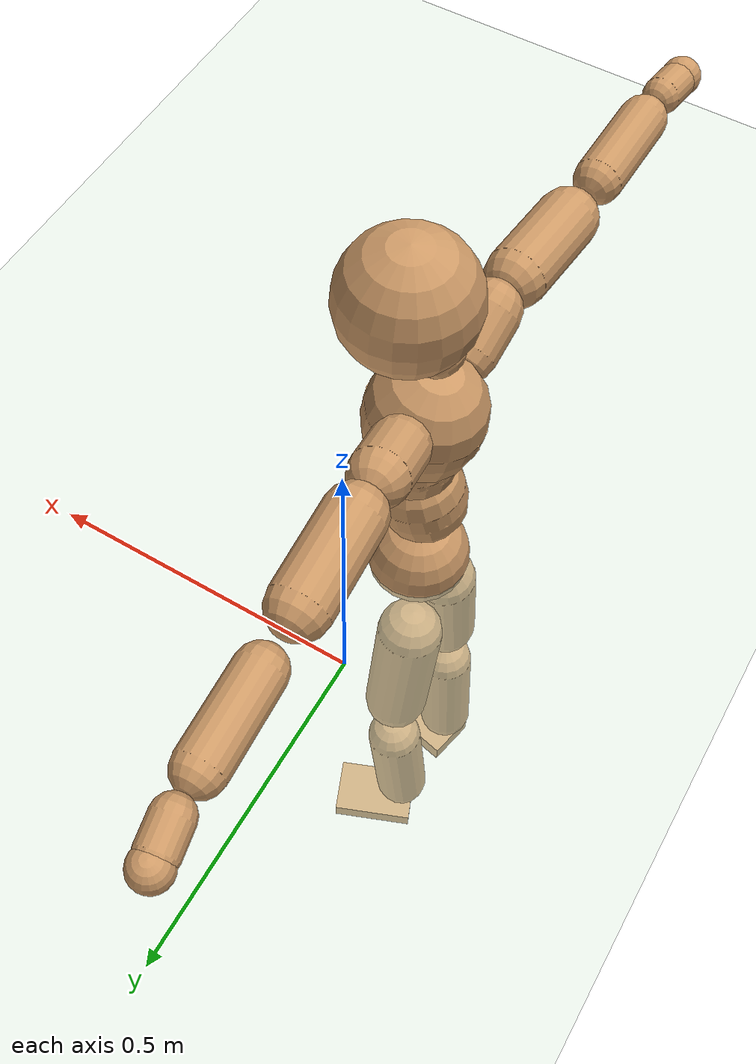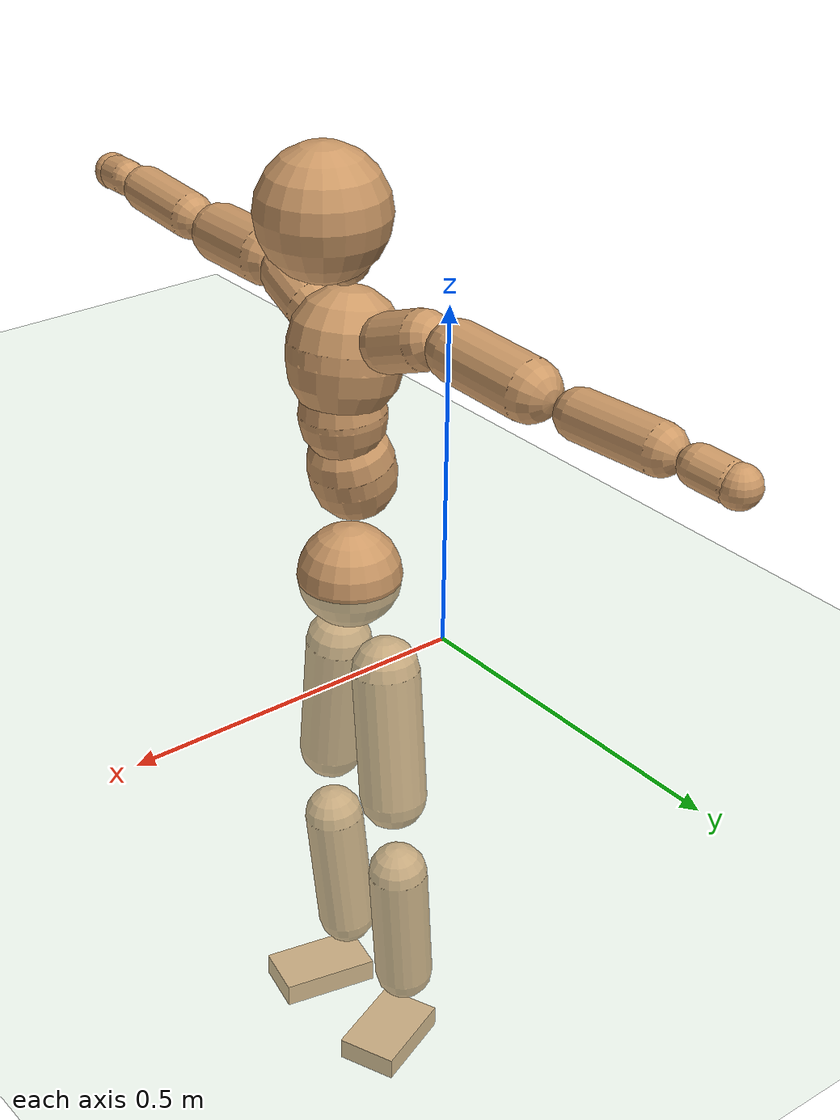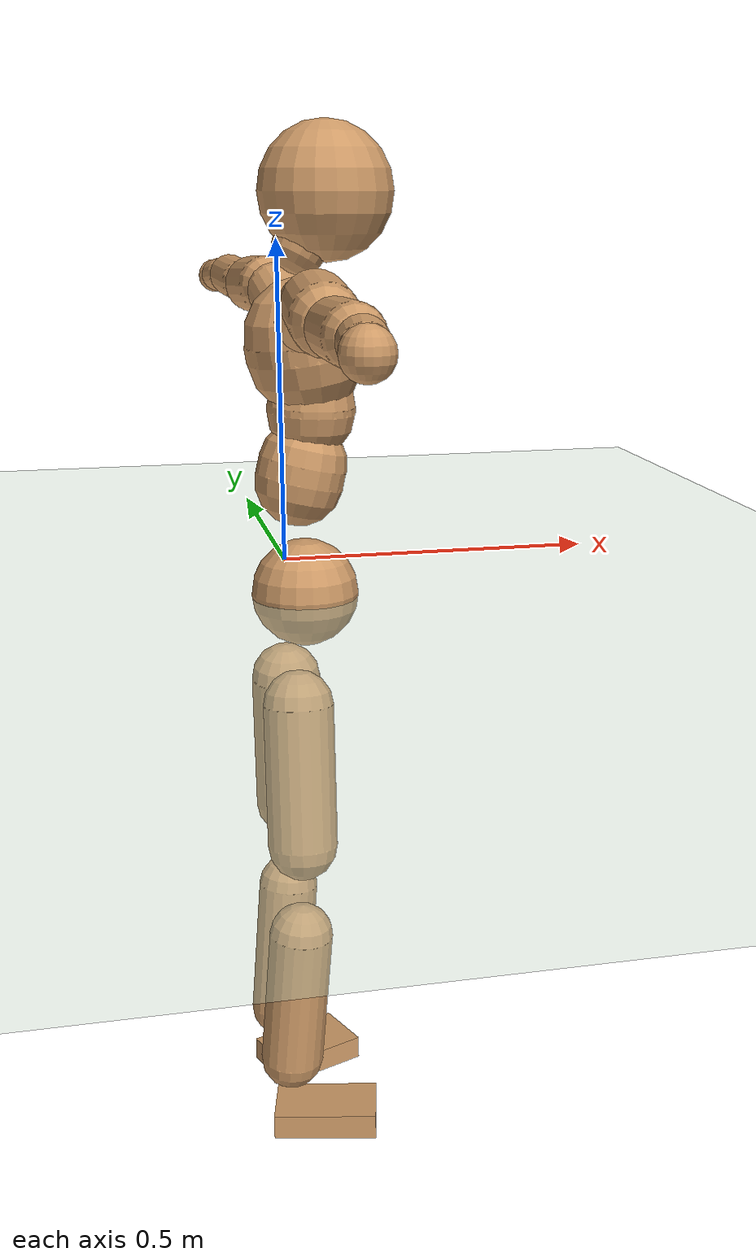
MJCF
<mujoco model="humanoid">
  <compiler coordinate="local" angle="radian"/>
  <default>
    <joint damping="0.0" armature="0.01" stiffness="0.0" limited="true"/>
    <geom conaffinity="1" condim="3" contype="7" margin="0.001" rgba="0.8 0.6 .4 1"/>
  </default>
  <asset>
    <texture type="skybox" builtin="gradient" rgb1=".4 .5 .6" rgb2="0 0 0" width="100" height="100"/>
    <texture builtin="flat" height="1278" mark="cross" markrgb="1 1 1" name="texgeom" random="0.01" rgb1="0.8 0.6 0.4" rgb2="0.8 0.6 0.4" type="cube" width="127"/>
    <texture builtin="checker" height="100" name="texplane" rgb1="0 0 0" rgb2="0.8 0.8 0.8" type="2d" width="100"/>
    <material name="MatPlane" reflectance="0.5" shininess="1" specular="1" texrepeat="60 60" texture="texplane"/>
    <material name="geom" texture="texgeom" texuniform="true"/>
  </asset>
  <worldbody>
    <light cutoff="100" diffuse="1 1 1" dir="-0 0 -1.3" directional="true" exponent="1" pos="0 0 1.3" specular=".1 .1 .1"/>
    <geom conaffinity="1" condim="3" name="floor" pos="0 0 0" rgba="0.8 0.9 0.8 1" size="100 100 .2" type="plane" material="MatPlane"/>
    <body name="Pelvis" pos="-0.0003 -0.2184 0.0041">
      <freejoint name="Pelvis"/>
      <geom type="sphere" contype="1" conaffinity="1" density="500" size="0.0792" pos="0.0000 0.0000 0.0000" name="Pelvis"/>
      <body name="L_Hip" pos="-0.0252 0.0485 -0.0755">
        <joint name="L_Hip_x" type="hinge" pos="0 0 0" axis="1 0 0" stiffness="800" damping="80" armature="0.02" range="-180.0000 180.0000"/>
        <joint name="L_Hip_y" type="hinge" pos="0 0 0" axis="0 1 0" stiffness="800" damping="80" armature="0.02" range="-180.0000 180.0000"/>
        <joint name="L_Hip_z" type="hinge" pos="0 0 0" axis="0 0 1" stiffness="800" damping="80" armature="0.02" range="-180.0000 180.0000"/>
        <geom type="capsule" contype="1" conaffinity="1" density="500" fromto="0.0014 0.0087 -0.0733 0.0058 0.0347 -0.2931" size="0.0524" name="L_Hip"/>
        <body name="L_Knee" pos="0.0072 0.0434 -0.3664">
          <joint name="L_Knee_x" type="hinge" pos="0 0 0" axis="1 0 0" stiffness="800" damping="80" armature="0.02" range="-180.0000 180.0000"/>
          <joint name="L_Knee_y" type="hinge" pos="0 0 0" axis="0 1 0" stiffness="800" damping="80" armature="0.02" range="-180.0000 180.0000"/>
          <joint name="L_Knee_z" type="hinge" pos="0 0 0" axis="0 0 1" stiffness="800" damping="80" armature="0.02" range="-180.0000 180.0000"/>
          <geom type="capsule" contype="1" conaffinity="1" density="500" fromto="-0.0064 -0.0020 -0.0736 -0.0254 -0.0080 -0.2942" size="0.047" name="L_Knee"/>
          <body name="L_Ankle" pos="-0.0318 -0.01 -0.3678">
            <joint name="L_Ankle_x" type="hinge" pos="0 0 0" axis="1 0 0" stiffness="800" damping="80" armature="0.02" range="-180.0000 180.0000"/>
            <joint name="L_Ankle_y" type="hinge" pos="0 0 0" axis="0 1 0" stiffness="800" damping="80" armature="0.02" range="-180.0000 180.0000"/>
            <joint name="L_Ankle_z" type="hinge" pos="0 0 0" axis="0 0 1" stiffness="800" damping="80" armature="0.02" range="-180.0000 180.0000"/>
            <geom type="box" contype="1" conaffinity="1" density="500" pos="0.0526 0.0213 -0.0265" size="0.0729 0.048 0.0185" quat="0.9815 0.0000 0.0000 0.1912" name="L_Ankle"/>
            <body name="L_Toe" pos="0.1053 0.0426 -0.053">
              <joint name="L_Toe_x" type="hinge" pos="0 0 0" axis="1 0 0" stiffness="500" damping="50" armature="0.02" range="-180.0000 180.0000"/>
              <joint name="L_Toe_y" type="hinge" pos="0 0 0" axis="0 1 0" stiffness="500" damping="50" armature="0.02" range="-180.0000 180.0000"/>
              <joint name="L_Toe_z" type="hinge" pos="0 0 0" axis="0 0 1" stiffness="500" damping="50" armature="0.02" range="-180.0000 180.0000"/>
              <geom type="box" contype="1" conaffinity="1" density="500" pos="0.0000 0.0000 0.0280" size="0.001 0.0023 0.001" quat="0.9806 0.0000 0.0000 0.1959" name="L_Toe"/>
            </body>
          </body>
        </body>
      </body>
      <body name="R_Hip" pos="-0.0223 -0.0513 -0.0832">
        <joint name="R_Hip_x" type="hinge" pos="0 0 0" axis="1 0 0" stiffness="800" damping="80" armature="0.02" range="-180.0000 180.0000"/>
        <joint name="R_Hip_y" type="hinge" pos="0 0 0" axis="0 1 0" stiffness="800" damping="80" armature="0.02" range="-180.0000 180.0000"/>
        <joint name="R_Hip_z" type="hinge" pos="0 0 0" axis="0 0 1" stiffness="800" damping="80" armature="0.02" range="-180.0000 180.0000"/>
        <geom type="capsule" contype="1" conaffinity="1" density="500" fromto="-0.0006 -0.0086 -0.0715 -0.0025 -0.0342 -0.2861" size="0.0518" name="R_Hip"/>
        <body name="R_Knee" pos="-0.0031 -0.0428 -0.3576">
          <joint name="R_Knee_x" type="hinge" pos="0 0 0" axis="1 0 0" stiffness="800" damping="80" armature="0.02" range="-180.0000 180.0000"/>
          <joint name="R_Knee_y" type="hinge" pos="0 0 0" axis="0 1 0" stiffness="800" damping="80" armature="0.02" range="-180.0000 180.0000"/>
          <joint name="R_Knee_z" type="hinge" pos="0 0 0" axis="0 0 1" stiffness="800" damping="80" armature="0.02" range="-180.0000 180.0000"/>
          <geom type="capsule" contype="1" conaffinity="1" density="500" fromto="-0.0058 0.0031 -0.0723 -0.0233 0.0125 -0.2893" size="0.048" name="R_Knee"/>
          <body name="R_Ankle" pos="-0.0291 0.0156 -0.3617">
            <joint name="R_Ankle_x" type="hinge" pos="0 0 0" axis="1 0 0" stiffness="800" damping="80" armature="0.02" range="-180.0000 180.0000"/>
            <joint name="R_Ankle_y" type="hinge" pos="0 0 0" axis="0 1 0" stiffness="800" damping="80" armature="0.02" range="-180.0000 180.0000"/>
            <joint name="R_Ankle_z" type="hinge" pos="0 0 0" axis="0 0 1" stiffness="800" damping="80" armature="0.02" range="-180.0000 180.0000"/>
            <geom type="box" contype="1" conaffinity="1" density="500" pos="0.0566 -0.0123 -0.0283" size="0.079 0.0451 0.0195" quat="0.9943 0.0000 0.0000 -0.1067" name="R_Ankle"/>
            <body name="R_Toe" pos="0.1132 -0.0246 -0.0566">
              <joint name="R_Toe_x" type="hinge" pos="0 0 0" axis="1 0 0" stiffness="500" damping="50" armature="0.02" range="-180.0000 180.0000"/>
              <joint name="R_Toe_y" type="hinge" pos="0 0 0" axis="0 1 0" stiffness="500" damping="50" armature="0.02" range="-180.0000 180.0000"/>
              <joint name="R_Toe_z" type="hinge" pos="0 0 0" axis="0 0 1" stiffness="500" damping="50" armature="0.02" range="-180.0000 180.0000"/>
              <geom type="box" contype="1" conaffinity="1" density="500" pos="0.0000 0.0000 0.0307" size="0.0009 0.0022 0.0011" quat="0.9953 0.0000 0.0000 -0.0967" name="R_Toe"/>
            </body>
          </body>
        </body>
      </body>
      <body name="Torso" pos="-0.0176 0.0037 0.1107">
        <joint name="Torso_x" type="hinge" pos="0 0 0" axis="1 0 0" stiffness="1000" damping="100" armature="0.02" range="-180.0000 180.0000"/>
        <joint name="Torso_y" type="hinge" pos="0 0 0" axis="0 1 0" stiffness="1000" damping="100" armature="0.02" range="-180.0000 180.0000"/>
        <joint name="Torso_z" type="hinge" pos="0 0 0" axis="0 0 1" stiffness="1000" damping="100" armature="0.02" range="-180.0000 180.0000"/>
        <geom type="capsule" contype="1" conaffinity="1" density="500" fromto="0.0192 0.0025 0.0790 0.0128 0.0017 0.0527" size="0.0645" name="Torso"/>
        <body name="Spine" pos="0.032 0.0042 0.1317">
          <joint name="Spine_x" type="hinge" pos="0 0 0" axis="1 0 0" stiffness="1000" damping="100" armature="0.02" range="-180.0000 180.0000"/>
          <joint name="Spine_y" type="hinge" pos="0 0 0" axis="0 1 0" stiffness="1000" damping="100" armature="0.02" range="-180.0000 180.0000"/>
          <joint name="Spine_z" type="hinge" pos="0 0 0" axis="0 0 1" stiffness="1000" damping="100" armature="0.02" range="-180.0000 180.0000"/>
          <geom type="capsule" contype="1" conaffinity="1" density="500" fromto="0.0011 -0.0011 0.0312 0.0007 -0.0007 0.0208" size="0.064" name="Spine"/>
          <body name="Chest" pos="0.0018 -0.0018 0.052">
            <joint name="Chest_x" type="hinge" pos="0 0 0" axis="1 0 0" stiffness="1000" damping="100" armature="0.02" range="-180.0000 180.0000"/>
            <joint name="Chest_y" type="hinge" pos="0 0 0" axis="0 1 0" stiffness="1000" damping="100" armature="0.02" range="-180.0000 180.0000"/>
            <joint name="Chest_z" type="hinge" pos="0 0 0" axis="0 0 1" stiffness="1000" damping="100" armature="0.02" range="-180.0000 180.0000"/>
            <geom type="capsule" contype="1" conaffinity="1" density="500" fromto="-0.0121 -0.0055 0.0749 -0.0081 -0.0037 0.0500" size="0.0841" name="Chest"/>
            <body name="Neck" pos="-0.0238 -0.0138 0.1815">
              <joint name="Neck_x" type="hinge" pos="0 0 0" axis="1 0 0" stiffness="500" damping="50" armature="0.02" range="-180.0000 180.0000"/>
              <joint name="Neck_y" type="hinge" pos="0 0 0" axis="0 1 0" stiffness="500" damping="50" armature="0.02" range="-180.0000 180.0000"/>
              <joint name="Neck_z" type="hinge" pos="0 0 0" axis="0 0 1" stiffness="500" damping="50" armature="0.02" range="-180.0000 180.0000"/>
              <geom type="capsule" contype="1" conaffinity="1" density="500" fromto="0.0095 0.0016 0.0179 0.0379 0.0064 0.0717" size="0.0397" name="Neck"/>
              <body name="Head" pos="0.0474 0.008 0.0896">
                <joint name="Head_x" type="hinge" pos="0 0 0" axis="1 0 0" stiffness="500" damping="50" armature="0.02" range="-180.0000 180.0000"/>
                <joint name="Head_y" type="hinge" pos="0 0 0" axis="0 1 0" stiffness="500" damping="50" armature="0.02" range="-180.0000 180.0000"/>
                <joint name="Head_z" type="hinge" pos="0 0 0" axis="0 0 1" stiffness="500" damping="50" armature="0.02" range="-180.0000 180.0000"/>
                <geom type="sphere" contype="1" conaffinity="1" density="500" size="0.0952" pos="0.0000 0.0000 0.0000" name="Head"/>
              </body>
            </body>
            <body name="L_Thorax" pos="-0.0169 0.061 0.0962">
              <joint name="L_Thorax_x" type="hinge" pos="0 0 0" axis="1 0 0" stiffness="500" damping="50" armature="0.02" range="-180.0000 180.0000"/>
              <joint name="L_Thorax_y" type="hinge" pos="0 0 0" axis="0 1 0" stiffness="500" damping="50" armature="0.02" range="-180.0000 180.0000"/>
              <joint name="L_Thorax_z" type="hinge" pos="0 0 0" axis="0 0 1" stiffness="500" damping="50" armature="0.02" range="-180.0000 180.0000"/>
              <geom type="capsule" contype="1" conaffinity="1" density="500" fromto="-0.0026 0.0210 0.0080 -0.0104 0.0842 0.0320" size="0.0424" name="L_Thorax"/>
              <body name="L_Shoulder" pos="-0.0129 0.1052 0.04">
                <joint name="L_Shoulder_x" type="hinge" pos="0 0 0" axis="1 0 0" stiffness="500" damping="50" armature="0.02" range="-720.0000 720.0000"/>
                <joint name="L_Shoulder_y" type="hinge" pos="0 0 0" axis="0 1 0" stiffness="500" damping="50" armature="0.02" range="-720.0000 720.0000"/>
                <joint name="L_Shoulder_z" type="hinge" pos="0 0 0" axis="0 0 1" stiffness="500" damping="50" armature="0.02" range="-720.0000 720.0000"/>
                <geom type="capsule" contype="1" conaffinity="1" density="500" fromto="-0.0020 0.0449 -0.0024 -0.0080 0.1797 -0.0094" size="0.0432" name="L_Shoulder"/>
                <body name="L_Elbow" pos="-0.0101 0.2246 -0.0118">
                  <joint name="L_Elbow_x" type="hinge" pos="0 0 0" axis="1 0 0" stiffness="500" damping="50" armature="0.02" range="-720.0000 720.0000"/>
                  <joint name="L_Elbow_y" type="hinge" pos="0 0 0" axis="0 1 0" stiffness="500" damping="50" armature="0.02" range="-720.0000 720.0000"/>
                  <joint name="L_Elbow_z" type="hinge" pos="0 0 0" axis="0 0 1" stiffness="500" damping="50" armature="0.02" range="-720.0000 720.0000"/>
                  <geom type="capsule" contype="1" conaffinity="1" density="500" fromto="-0.0025 0.0438 0.0012 -0.0099 0.1752 0.0046" size="0.0345" name="L_Elbow"/>
                  <body name="L_Wrist" pos="-0.0124 0.219 0.0058">
                    <joint name="L_Wrist_x" type="hinge" pos="0 0 0" axis="1 0 0" stiffness="300" damping="30" armature="0.02" range="-180.0000 180.0000"/>
                    <joint name="L_Wrist_y" type="hinge" pos="0 0 0" axis="0 1 0" stiffness="300" damping="30" armature="0.02" range="-180.0000 180.0000"/>
                    <joint name="L_Wrist_z" type="hinge" pos="0 0 0" axis="0 0 1" stiffness="300" damping="30" armature="0.02" range="-180.0000 180.0000"/>
                    <geom type="capsule" contype="1" conaffinity="1" density="500" fromto="-0.0025 0.0138 -0.0017 -0.0099 0.0553 -0.0068" size="0.0275" name="L_Wrist"/>
                    <body name="L_Hand" pos="-0.0123 0.0691 -0.0085">
                      <joint name="L_Hand_x" type="hinge" pos="0 0 0" axis="1 0 0" stiffness="300" damping="30" armature="0.02" range="-180.0000 180.0000"/>
                      <joint name="L_Hand_y" type="hinge" pos="0 0 0" axis="0 1 0" stiffness="300" damping="30" armature="0.02" range="-180.0000 180.0000"/>
                      <joint name="L_Hand_z" type="hinge" pos="0 0 0" axis="0 0 1" stiffness="300" damping="30" armature="0.02" range="-180.0000 180.0000"/>
                      <geom type="sphere" contype="1" conaffinity="1" density="500" size="0.0285" pos="0.0000 0.0000 0.0000" name="L_Hand"/>
                    </body>
                  </body>
                </body>
              </body>
            </body>
            <body name="R_Thorax" pos="-0.0197 -0.0747 0.0971">
              <joint name="R_Thorax_x" type="hinge" pos="0 0 0" axis="1 0 0" stiffness="500" damping="50" armature="0.02" range="-180.0000 180.0000"/>
              <joint name="R_Thorax_y" type="hinge" pos="0 0 0" axis="0 1 0" stiffness="500" damping="50" armature="0.02" range="-180.0000 180.0000"/>
              <joint name="R_Thorax_z" type="hinge" pos="0 0 0" axis="0 0 1" stiffness="500" damping="50" armature="0.02" range="-180.0000 180.0000"/>
              <geom type="capsule" contype="1" conaffinity="1" density="500" fromto="-0.0009 -0.0196 0.0081 -0.0034 -0.0783 0.0325" size="0.0432" name="R_Thorax"/>
              <body name="R_Shoulder" pos="-0.0043 -0.0978 0.0407">
                <joint name="R_Shoulder_x" type="hinge" pos="0 0 0" axis="1 0 0" stiffness="500" damping="50" armature="0.02" range="-720.0000 720.0000"/>
                <joint name="R_Shoulder_y" type="hinge" pos="0 0 0" axis="0 1 0" stiffness="500" damping="50" armature="0.02" range="-720.0000 720.0000"/>
                <joint name="R_Shoulder_z" type="hinge" pos="0 0 0" axis="0 0 1" stiffness="500" damping="50" armature="0.02" range="-720.0000 720.0000"/>
                <geom type="capsule" contype="1" conaffinity="1" density="500" fromto="-0.0033 -0.0447 -0.0026 -0.0133 -0.1786 -0.0103" size="0.0449" name="R_Shoulder"/>
                <body name="R_Elbow" pos="-0.0166 -0.2233 -0.0129">
                  <joint name="R_Elbow_x" type="hinge" pos="0 0 0" axis="1 0 0" stiffness="500" damping="50" armature="0.02" range="-720.0000 720.0000"/>
                  <joint name="R_Elbow_y" type="hinge" pos="0 0 0" axis="0 1 0" stiffness="500" damping="50" armature="0.02" range="-720.0000 720.0000"/>
                  <joint name="R_Elbow_z" type="hinge" pos="0 0 0" axis="0 0 1" stiffness="500" damping="50" armature="0.02" range="-720.0000 720.0000"/>
                  <geom type="capsule" contype="1" conaffinity="1" density="500" fromto="-0.0016 -0.0458 0.0014 -0.0063 -0.1833 0.0058" size="0.0359" name="R_Elbow"/>
                  <body name="R_Wrist" pos="-0.0078 -0.2291 0.0072">
                    <joint name="R_Wrist_x" type="hinge" pos="0 0 0" axis="1 0 0" stiffness="300" damping="30" armature="0.02" range="-180.0000 180.0000"/>
                    <joint name="R_Wrist_y" type="hinge" pos="0 0 0" axis="0 1 0" stiffness="300" damping="30" armature="0.02" range="-180.0000 180.0000"/>
                    <joint name="R_Wrist_z" type="hinge" pos="0 0 0" axis="0 0 1" stiffness="300" damping="30" armature="0.02" range="-180.0000 180.0000"/>
                    <geom type="capsule" contype="1" conaffinity="1" density="500" fromto="-0.0016 -0.0145 -0.0013 -0.0065 -0.0578 -0.0053" size="0.0285" name="R_Wrist"/>
                    <body name="R_Hand" pos="-0.0081 -0.0723 -0.0066">
                      <joint name="R_Hand_x" type="hinge" pos="0 0 0" axis="1 0 0" stiffness="300" damping="30" armature="0.02" range="-180.0000 180.0000"/>
                      <joint name="R_Hand_y" type="hinge" pos="0 0 0" axis="0 1 0" stiffness="300" damping="30" armature="0.02" range="-180.0000 180.0000"/>
                      <joint name="R_Hand_z" type="hinge" pos="0 0 0" axis="0 0 1" stiffness="300" damping="30" armature="0.02" range="-180.0000 180.0000"/>
                      <geom type="sphere" contype="1" conaffinity="1" density="500" size="0.0295" pos="0.0000 0.0000 0.0000" name="R_Hand"/>
                    </body>
                  </body>
                </body>
              </body>
            </body>
          </body>
        </body>
      </body>
    </body>
  </worldbody>
  <actuator>
    <motor name="L_Hip_x" joint="L_Hip_x" gear="500"/>
    <motor name="L_Hip_y" joint="L_Hip_y" gear="500"/>
    <motor name="L_Hip_z" joint="L_Hip_z" gear="500"/>
    <motor name="L_Knee_x" joint="L_Knee_x" gear="500"/>
    <motor name="L_Knee_y" joint="L_Knee_y" gear="500"/>
    <motor name="L_Knee_z" joint="L_Knee_z" gear="500"/>
    <motor name="L_Ankle_x" joint="L_Ankle_x" gear="500"/>
    <motor name="L_Ankle_y" joint="L_Ankle_y" gear="500"/>
    <motor name="L_Ankle_z" joint="L_Ankle_z" gear="500"/>
    <motor name="L_Toe_x" joint="L_Toe_x" gear="500"/>
    <motor name="L_Toe_y" joint="L_Toe_y" gear="500"/>
    <motor name="L_Toe_z" joint="L_Toe_z" gear="500"/>
    <motor name="R_Hip_x" joint="R_Hip_x" gear="500"/>
    <motor name="R_Hip_y" joint="R_Hip_y" gear="500"/>
    <motor name="R_Hip_z" joint="R_Hip_z" gear="500"/>
    <motor name="R_Knee_x" joint="R_Knee_x" gear="500"/>
    <motor name="R_Knee_y" joint="R_Knee_y" gear="500"/>
    <motor name="R_Knee_z" joint="R_Knee_z" gear="500"/>
    <motor name="R_Ankle_x" joint="R_Ankle_x" gear="500"/>
    <motor name="R_Ankle_y" joint="R_Ankle_y" gear="500"/>
    <motor name="R_Ankle_z" joint="R_Ankle_z" gear="500"/>
    <motor name="R_Toe_x" joint="R_Toe_x" gear="500"/>
    <motor name="R_Toe_y" joint="R_Toe_y" gear="500"/>
    <motor name="R_Toe_z" joint="R_Toe_z" gear="500"/>
    <motor name="Torso_x" joint="Torso_x" gear="500"/>
    <motor name="Torso_y" joint="Torso_y" gear="500"/>
    <motor name="Torso_z" joint="Torso_z" gear="500"/>
    <motor name="Spine_x" joint="Spine_x" gear="500"/>
    <motor name="Spine_y" joint="Spine_y" gear="500"/>
    <motor name="Spine_z" joint="Spine_z" gear="500"/>
    <motor name="Chest_x" joint="Chest_x" gear="500"/>
    <motor name="Chest_y" joint="Chest_y" gear="500"/>
    <motor name="Chest_z" joint="Chest_z" gear="500"/>
    <motor name="Neck_x" joint="Neck_x" gear="500"/>
    <motor name="Neck_y" joint="Neck_y" gear="500"/>
    <motor name="Neck_z" joint="Neck_z" gear="500"/>
    <motor name="Head_x" joint="Head_x" gear="500"/>
    <motor name="Head_y" joint="Head_y" gear="500"/>
    <motor name="Head_z" joint="Head_z" gear="500"/>
    <motor name="L_Thorax_x" joint="L_Thorax_x" gear="500"/>
    <motor name="L_Thorax_y" joint="L_Thorax_y" gear="500"/>
    <motor name="L_Thorax_z" joint="L_Thorax_z" gear="500"/>
    <motor name="L_Shoulder_x" joint="L_Shoulder_x" gear="500"/>
    <motor name="L_Shoulder_y" joint="L_Shoulder_y" gear="500"/>
    <motor name="L_Shoulder_z" joint="L_Shoulder_z" gear="500"/>
    <motor name="L_Elbow_x" joint="L_Elbow_x" gear="500"/>
    <motor name="L_Elbow_y" joint="L_Elbow_y" gear="500"/>
    <motor name="L_Elbow_z" joint="L_Elbow_z" gear="500"/>
    <motor name="L_Wrist_x" joint="L_Wrist_x" gear="500"/>
    <motor name="L_Wrist_y" joint="L_Wrist_y" gear="500"/>
    <motor name="L_Wrist_z" joint="L_Wrist_z" gear="500"/>
    <motor name="L_Hand_x" joint="L_Hand_x" gear="500"/>
    <motor name="L_Hand_y" joint="L_Hand_y" gear="500"/>
    <motor name="L_Hand_z" joint="L_Hand_z" gear="500"/>
    <motor name="R_Thorax_x" joint="R_Thorax_x" gear="500"/>
    <motor name="R_Thorax_y" joint="R_Thorax_y" gear="500"/>
    <motor name="R_Thorax_z" joint="R_Thorax_z" gear="500"/>
    <motor name="R_Shoulder_x" joint="R_Shoulder_x" gear="500"/>
    <motor name="R_Shoulder_y" joint="R_Shoulder_y" gear="500"/>
    <motor name="R_Shoulder_z" joint="R_Shoulder_z" gear="500"/>
    <motor name="R_Elbow_x" joint="R_Elbow_x" gear="500"/>
    <motor name="R_Elbow_y" joint="R_Elbow_y" gear="500"/>
    <motor name="R_Elbow_z" joint="R_Elbow_z" gear="500"/>
    <motor name="R_Wrist_x" joint="R_Wrist_x" gear="500"/>
    <motor name="R_Wrist_y" joint="R_Wrist_y" gear="500"/>
    <motor name="R_Wrist_z" joint="R_Wrist_z" gear="500"/>
    <motor name="R_Hand_x" joint="R_Hand_x" gear="500"/>
    <motor name="R_Hand_y" joint="R_Hand_y" gear="500"/>
    <motor name="R_Hand_z" joint="R_Hand_z" gear="500"/>
  </actuator>
  <contact>
    <exclude body1="Torso" body2="Chest"/>
    <exclude body1="Head" body2="Chest"/>
    <exclude body1="R_Knee" body2="R_Toe"/>
    <exclude body1="R_Knee" body2="L_Ankle"/>
    <exclude body1="R_Knee" body2="L_Toe"/>
    <exclude body1="L_Knee" body2="L_Toe"/>
    <exclude body1="L_Knee" body2="R_Ankle"/>
    <exclude body1="L_Knee" body2="R_Toe"/>
    <exclude body1="L_Shoulder" body2="Chest"/>
    <exclude body1="R_Shoulder" body2="Chest"/>
  </contact>
  <sensor/>
  <size njmax="700" nconmax="700"/>
</mujoco>
